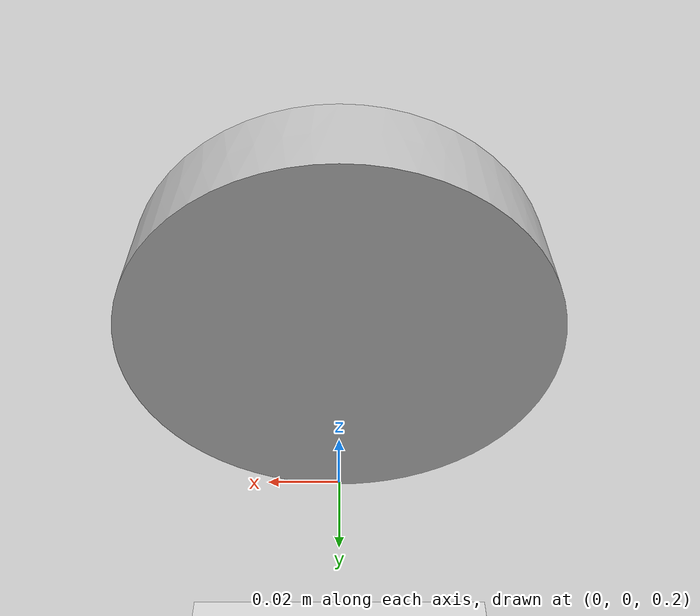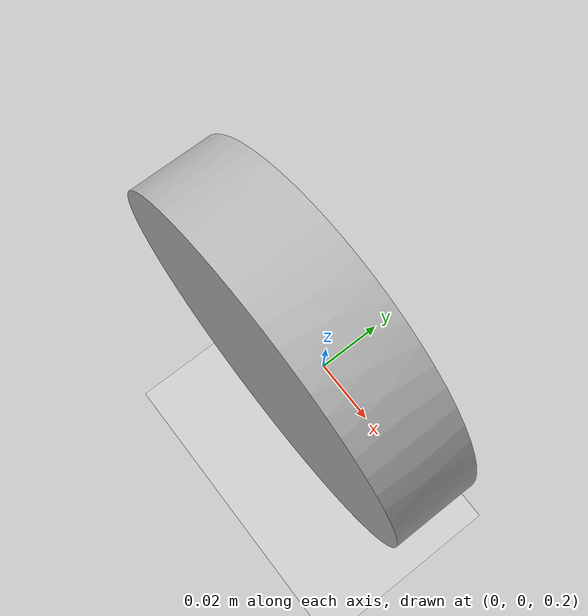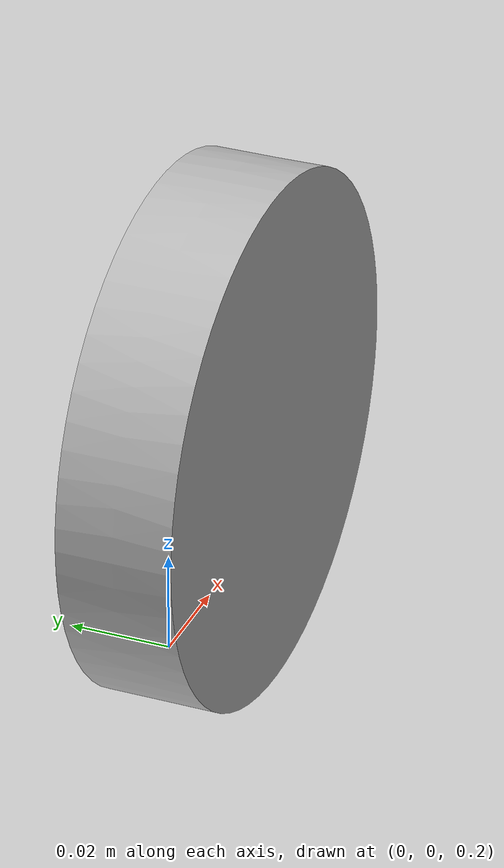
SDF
<?xml version="1.0" ?>
<sdf version="1.4">
  <world name="default">
    <gui>
      <camera name="user_camera">
        <pose>-1.66034 -0.521469 0.783444 0 0.3 0.3</pose>
      </camera>
    </gui>
    <physics type="ode">
      <gravity>0 0 -9.81</gravity>
       <bullet>
        <solver>
          <min_step_size>0.00001</min_step_size>
          <iters>200</iters>
          <sor>1.4</sor>
        </solver>
      </bullet>
      <real_time_update_rate>4000</real_time_update_rate>
      <max_step_size>0.00025</max_step_size>
    </physics>
    <!-- A global light source -->
    <include>
      <uri>model://sun</uri>
    </include>

    <include>
      <pose>0 0 0.25 1.57 0 0</pose>  <!-- This controls the initial position and orientation of the robot in the world: x y z r p y -->
      <uri>model://omni_wheel</uri>
    </include>

    <!-- A ground plane -->
    <include>
      <uri>model://ground_plane</uri>
    </include>

  </world>
</sdf>

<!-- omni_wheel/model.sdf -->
<sdf version='1.6'>
  <model name='omni_wheel'>
    <link name='omni_wheel'>
      <inertial>
        <mass>0.1</mass>
        <inertia>
          <ixx>0.17</ixx>
          <ixy>0.00</ixy>
          <ixz>0.00</ixz>
          <iyy>0.17</iyy>
          <iyz>0.00</iyz>
          <izz>0.17</izz>
        </inertia>
      </inertial>
      <pose frame=''>0 0 0 0 -0 0</pose>
      <visual name='visual'>
        <pose frame=''>0 0 0 0 -0 0</pose>
        <geometry>
          <mesh>
            <uri>model://laser_robot/omni_wheel/meshes/roda_omni.obj</uri>
            <scale>1 1 1</scale>
          </mesh>
        </geometry>
        <transparency>0</transparency>
        <cast_shadows>1</cast_shadows>
      </visual>
      <collision name='collision'>
        <laser_retro>0</laser_retro>
        <max_contacts>10</max_contacts>
        <pose frame=''>0 0 0.05 0 -0 0</pose>
        <geometry>
          <mesh>
            <uri>model://laser_robot/omni_wheel/meshes/roda_omni.obj</uri>
            <scale>1 1 1</scale>
          </mesh>
        </geometry>
        <surface>
          <friction>
            <ode>
              <mu>1</mu>
              <mu2>1</mu2>
              <fdir1>0 0 0</fdir1>
              <slip1>0</slip1>
              <slip2>0</slip2>
            </ode>
            <torsional>
              <coefficient>1</coefficient>
              <patch_radius>1</patch_radius>
              <surface_radius>1</surface_radius>
              <use_patch_radius>1</use_patch_radius>
              <ode>
                <slip>0</slip>
              </ode>
            </torsional>
          </friction>
          <bounce>
            <restitution_coefficient>1</restitution_coefficient>
            <threshold>1e+06</threshold>
          </bounce>
          <contact>
            <collide_without_contact>0</collide_without_contact>
            <collide_without_contact_bitmask>1</collide_without_contact_bitmask>
            <collide_bitmask>1</collide_bitmask>
            <ode>
              <soft_cfm>0</soft_cfm>
              <soft_erp>0.2</soft_erp>
              <kp>1e+13</kp>
              <kd>1</kd>
              <max_vel>0.01</max_vel>
              <min_depth>0</min_depth>
            </ode>
            <bullet>
              <split_impulse>1</split_impulse>
              <split_impulse_penetration_threshold>-0.01</split_impulse_penetration_threshold>
              <soft_cfm>0</soft_cfm>
              <soft_erp>0.2</soft_erp>
              <kp>1e+13</kp>
              <kd>1</kd>
            </bullet>
          </contact>
        </surface>
      </collision>
    </link>
    <static>0</static>
    <allow_auto_disable>1</allow_auto_disable>
  </model>
</sdf>
